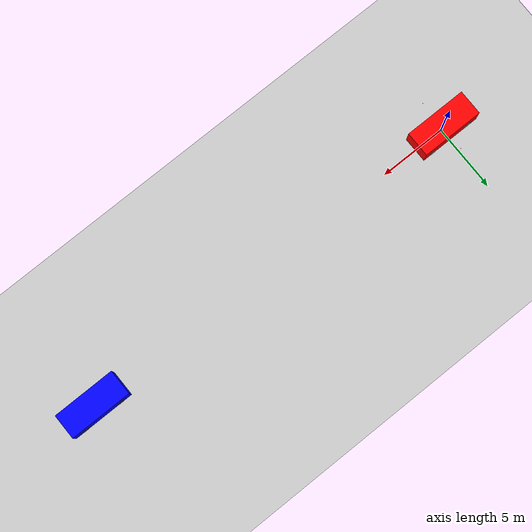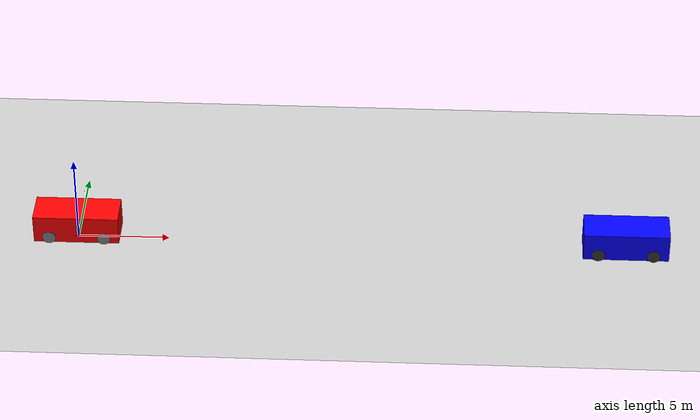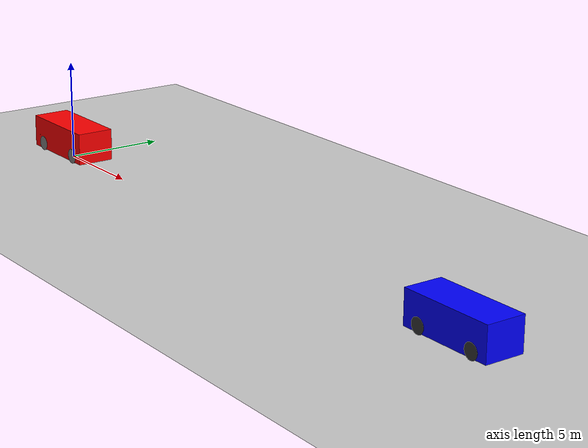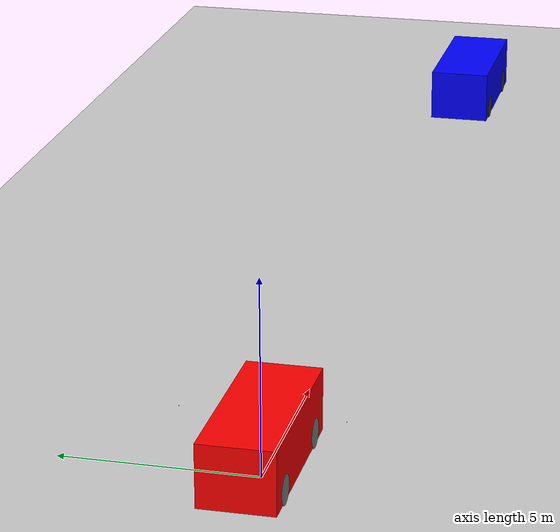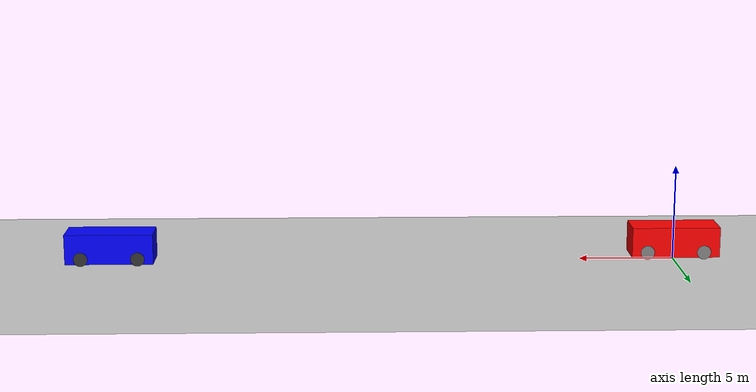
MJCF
<mujoco model="car">
  <compiler inertiafromgeom="true"/>
  <option timestep="0.002" gravity="0 0 -9.81"/>

  <asset>
    <texture name="grid" type="2d" builtin="checker" rgb1="0.2 0.3 0.4" rgb2="0.8 0.8 0.8" width="512" height="512"/>
    <material name="grid_mat" texture="grid" texrepeat="5 5" specular="0.3" shininess="0.3"/>
    <texture name="wheel_pattern" type="cube" builtin="checker" rgb1="1 1 1" rgb2="0 0 0" width="64" height="64"/>
    <material name="wheel_mat" texture="wheel_pattern"
              texrepeat="10 2" texuniform="true"
              specular="0.4" shininess="0.3" reflectance="0.05"/>
  </asset>

  <worldbody>
    <geom name="floor" type="plane" size="150 150 0.3"
          rgba="0.8 0.8 0.8 1" material="grid_mat"
          friction="1.6 0.25 0.02"
          solref="0.005 1" solimp="0.9 0.95 0.001"/>

    <light name="sun_key"
       pos="0 0 12" dir="0 0 -1" directional="true"
       diffuse="0.9 0.9 0.9" ambient="0.45 0.45 0.45" specular="0.2 0.2 0.2"
       castshadow="false"/>
    <light name="sun_fill"
          pos="-12 10 8" dir="0 0 -1" directional="true"
          diffuse="0.6 0.6 0.6" ambient="0.35 0.35 0.35" specular="0 0 0"
          castshadow="false"/>

    <body name="chassis" pos="0 0 1.06">
      <inertial pos="0.2375 0 -0.53" mass="1682" diaginertia="750 3500 3800"/>
      <joint name="root" type="free" damping="8"/>

      <geom name="chassis_geom" type="box" size="2.3275 0.945 0.8025" rgba="1 0 0 1"/>

      <site name="driver_seat" pos="0.15 0.75 0.09" size="0.015" rgba="1 0 1 0.5"/>
      <site name="lidar_left"  pos="0.15  2   0.5" size="0.01" rgba="1 0 0 1"/>
      <site name="lidar_right" pos="0.15 -2   0.5" size="0.01" rgba="1 0 0 1"/>
      <site name="lidar_front" pos="1.5 0 0.2" size="0.02" rgba="0 1 0 1"/>
      <site name="lidar_high" pos="0 0 1.50" euler="0 0 0" size="0.01" rgba="1 0 0 1"/>
      <site name="lidar_low"  pos="2.10 0 0.55" euler="0 0 0" size="0.01" rgba="0 0 1 1"/>

      <body name="fl_susp" pos=" 1.5  0.82  0.00">
        <inertial pos="0 0 0" mass="25" diaginertia="0.3 0.3 0.3"/>
        <joint name="fl_suspension" type="slide" axis="0 0 1"
               range="-0.10 0.10" damping="2000" stiffness="55000" springref="0.0"/>
        <body name="front_left_wheel" pos="0 0 -0.53">
          <joint name="steer_fl" type="hinge" axis="0 0 -1" range="-1.5 1.5" damping="5"/>
          <joint name="fl_wheel"  type="hinge" axis="0 1 0" damping="0.1"/>
          <geom  name="fl_geom"   type="cylinder" size="0.37 0.1275" euler="90 0 0"
                 material="wheel_mat" mass="27"
                 friction="1.2 0.4 0.04"
                 solref="0.005 1" solimp="0.9 0.95 0.001"/>
        </body>
      </body>

      <body name="fr_susp" pos=" 1.5 -0.82  0.00">
        <inertial pos="0 0 0" mass="25" diaginertia="0.3 0.3 0.3"/>
        <joint name="fr_suspension" type="slide" axis="0 0 1"
               range="-0.10 0.10" damping="2000" stiffness="55000" springref="0.0"/>
        <body name="front_right_wheel" pos="0 0 -0.53">
          <joint name="steer_fr" type="hinge" axis="0 0 -1" range="-1.5 1.5" damping="5"/>
          <joint name="fr_wheel"  type="hinge" axis="0 1 0" damping="0.1"/>
          <geom  name="fr_geom"   type="cylinder" size="0.37 0.1275" euler="90 0 0"
                 material="wheel_mat" mass="27"
                 friction="1.2 0.4 0.04"
                 solref="0.005 1" solimp="0.9 0.95 0.001"/>
        </body>
      </body>

      <body name="rl_susp" pos="-1.5  0.82  0.00">
        <inertial pos="0 0 0" mass="25" diaginertia="0.3 0.3 0.3"/>
        <joint name="rl_suspension" type="slide" axis="0 0 1"
               range="-0.10 0.10" damping="2600" stiffness="52000" springref="0.0"/>
        <body name="rear_left_wheel" pos="0 0 -0.53">
          <joint name="rl_wheel" type="hinge" axis="0 1 0" damping="0.1"/>
          <geom  name="rl_geom"  type="cylinder" size="0.37 0.1275" euler="90 0 0"
                 material="wheel_mat" mass="27"
                 friction="1.2 0.4 0.04"
                 solref="0.005 1" solimp="0.9 0.95 0.001"/>
        </body>
      </body>

      <body name="rr_susp" pos="-1.5 -0.82  0.00">
        <inertial pos="0 0 0" mass="25" diaginertia="0.3 0.3 0.3"/>
        <joint name="rr_suspension" type="slide" axis="0 0 1"
               range="-0.10 0.10" damping="2600" stiffness="52000" springref="0.0"/>
        <body name="rear_right_wheel" pos="0 0 -0.53">
          <joint name="rr_wheel" type="hinge" axis="0 1 0" damping="0.1"/>
          <geom  name="rr_geom"  type="cylinder" size="0.37 0.1275" euler="90 0 0"
                 material="wheel_mat" mass="27"
                 friction="1.2 0.4 0.04"
                 solref="0.005 1" solimp="0.9 0.95 0.001"/>
        </body>
      </body>
    </body>
    <body name="target_car" pos="30 0 0.86">
      <geom name="target_chassis" type="box" size="2.3275 0.945 0.8025" rgba="0 0 1 1"/>
      <geom name="target_fl_wheel" type="cylinder" size="0.37 0.1275"
            pos=" 1.5  0.82 -0.53" euler="90 0 0" material="wheel_mat" rgba="0.2 0.2 0.2 1"/>
      <geom name="target_fr_wheel" type="cylinder" size="0.37 0.1275"
            pos=" 1.5 -0.82 -0.53" euler="90 0 0" material="wheel_mat" rgba="0.2 0.2 0.2 1"/>
      <geom name="target_rl_wheel" type="cylinder" size="0.37 0.1275"
            pos="-1.5  0.82 -0.53" euler="90 0 0" material="wheel_mat" rgba="0.2 0.2 0.2 1"/>
      <geom name="target_rr_wheel" type="cylinder" size="0.37 0.1275"
            pos="-1.5 -0.82 -0.53" euler="90 0 0" material="wheel_mat" rgba="0.2 0.2 0.2 1"/>
    </body>
    </worldbody>

  <contact>
    <exclude body1="fl_susp" body2="chassis"/>
    <exclude body1="fr_susp" body2="chassis"/>
    <exclude body1="rl_susp" body2="chassis"/>
    <exclude body1="rr_susp" body2="chassis"/>
    <exclude body1="front_left_wheel"  body2="chassis"/>
    <exclude body1="front_right_wheel" body2="chassis"/>
    <exclude body1="rear_left_wheel"   body2="chassis"/>
    <exclude body1="rear_right_wheel"  body2="chassis"/>
  </contact>

  <sensor>
    <accelerometer name="accel_z" site="driver_seat"/>
    <gyro          name="gyro_pitch" site="driver_seat"/>
    <framepos      name="lidar_left_pos"  objtype="site" objname="lidar_left"/>
    <framepos      name="lidar_right_pos" objtype="site" objname="lidar_right"/>
  </sensor>

  <actuator>
    <motor name="fl_motor" joint="fl_wheel" ctrlrange="-10000 10000" gear="1.0"/>
    <motor name="fr_motor" joint="fr_wheel" ctrlrange="-10000 10000" gear="1.0"/>
    <motor name="rl_motor" joint="rl_wheel" ctrlrange="-10000 10000" gear="1.0"/>
    <motor name="rr_motor" joint="rr_wheel" ctrlrange="-10000 10000" gear="1.0"/>

    <motor name="fl_act" joint="fl_suspension" gear="1.0" ctrlrange="-12000 12000"/>
    <motor name="fr_act" joint="fr_suspension" gear="1.0" ctrlrange="-12000 12000"/>
    <motor name="rl_act" joint="rl_suspension" gear="1.0" ctrlrange="-12000 12000"/>
    <motor name="rr_act" joint="rr_suspension" gear="1.0" ctrlrange="-12000 12000"/>

    <position name="steer_fl_pos" joint="steer_fl" kp="4000" ctrlrange="-0.8 0.8"/>
    <position name="steer_fr_pos" joint="steer_fr" kp="4000" ctrlrange="-0.8 0.8"/>
  </actuator>
</mujoco>
